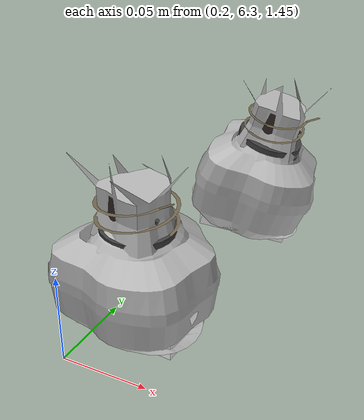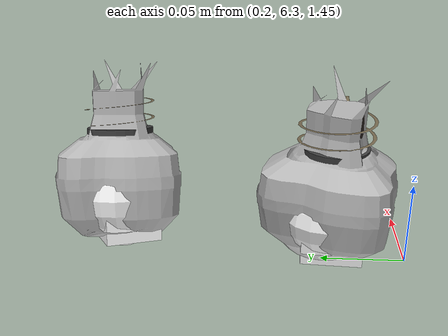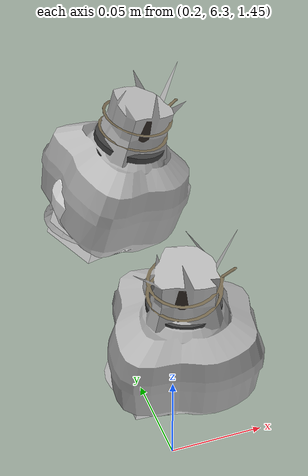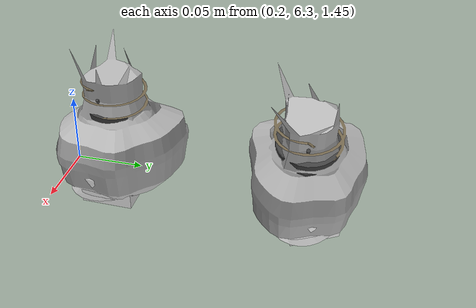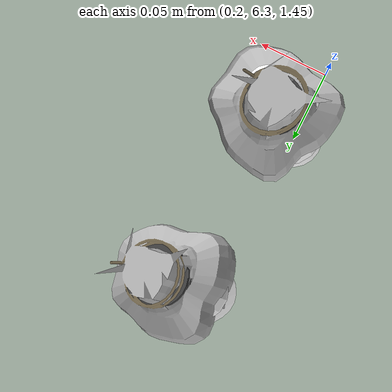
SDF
<sdf version="1.11">
 <world name="peach_orchard">
  <model name="ground">
   <static>true</static>
   <link name="link">
    <visual name="soil">
     <geometry><plane><normal>0 0 1</normal><size>32 22</size></plane></geometry>
     <material>
      <ambient>1 1 1 1</ambient>
      <diffuse>1 1 1 1</diffuse>
      <specular>0.1 0.1 0.1 1</specular>
      <pbr>
       <metal>
        <albedo_map>textures/soil_albedo.png</albedo_map>
        <normal_map type="tangent">textures/soil_normal.png</normal_map>
        <roughness>0.95</roughness>
        <metalness>0</metalness>
       </metal>
      </pbr>
     </material>
    </visual>
    <collision name="c_soil">
     <geometry><plane><normal>0 0 1</normal><size>32 22</size></plane></geometry>
    </collision>
   </link>
  </model>
  <model name="peach_tree_r2_t6_09">
   <pose>0.22 6.47412 1.45 0 0.282973 0.109489</pose>
   <static>true</static>
   <link name="bag">
    <visual name="bag_mesh">
     <pose>0 0 0.0460297 0 0 0</pose>
     <geometry>
      <mesh><uri>model://peach_sim/meshes/bagged_peach.glb</uri><scale>0.981084 1.12652 1.04613</scale></mesh>
     </geometry>
    </visual>
    <visual name="body">
     <pose>0 0 0.0280297 0 0 0</pose>
     <geometry><ellipsoid><radii>0.0367906 0.0292895 0.0302721</radii></ellipsoid></geometry>
     <material>
      <ambient>1 1 1 1</ambient>
      <diffuse>1 1 1 1</diffuse>
      <specular>0.1 0.1 0.1 1</specular>
      <pbr>
       <metal>
        <albedo_map>textures/paper_bag_albedo.png</albedo_map>
        <normal_map type="tangent">textures/paper_bag_normal.png</normal_map>
        <roughness>0.72</roughness>
        <metalness>0</metalness>
       </metal>
      </pbr>
     </material>
    </visual>
    <visual name="bottom_fold">
     <pose>0 0 0.012 0 0 0.35</pose>
     <geometry><box><size>0.0570255 0.0336829 0.022</size></box></geometry>
     <material>
      <ambient>1 1 1 1</ambient>
      <diffuse>1 1 1 1</diffuse>
      <specular>0.1 0.1 0.1 1</specular>
      <pbr>
       <metal>
        <albedo_map>textures/paper_bag_albedo.png</albedo_map>
        <normal_map type="tangent">textures/paper_bag_normal.png</normal_map>
        <roughness>0.8</roughness>
        <metalness>0</metalness>
       </metal>
      </pbr>
     </material>
    </visual>
    <visual name="fruit">
     <pose>0 0 0.0170505 0 0 0</pose>
     <geometry><sphere><radius>0.0239725</radius></sphere></geometry>
     <material>
      <ambient>1 1 1 1</ambient>
      <diffuse>1 1 1 1</diffuse>
      <specular>0.1 0.1 0.1 1</specular>
      <pbr>
       <metal>
        <albedo_map>textures/fruit_skin_albedo.png</albedo_map>
        <normal_map type="tangent">textures/fruit_skin_normal.png</normal_map>
        <roughness>0.55</roughness>
        <metalness>0</metalness>
       </metal>
      </pbr>
     </material>
    </visual>
    <visual name="neck">
     <pose>0 0 0.0650594 0 0 0</pose>
     <geometry><cylinder><radius>0.013</radius><length>0.018</length></cylinder></geometry>
     <material>
      <ambient>1 1 1 1</ambient>
      <diffuse>1 1 1 1</diffuse>
      <specular>0.1 0.1 0.1 1</specular>
      <pbr>
       <metal>
        <albedo_map>textures/paper_bag_albedo.png</albedo_map>
        <normal_map type="tangent">textures/paper_bag_normal.png</normal_map>
        <roughness>0.75</roughness>
        <metalness>0</metalness>
       </metal>
      </pbr>
     </material>
    </visual>
    <visual name="gather">
     <pose>0 0 0.0460594 0 0 0</pose>
     <geometry><cylinder><radius>0.019</radius><length>0.02</length></cylinder></geometry>
     <material>
      <ambient>1 1 1 1</ambient>
      <diffuse>1 1 1 1</diffuse>
      <specular>0.1 0.1 0.1 1</specular>
      <pbr>
       <metal>
        <albedo_map>textures/paper_bag_albedo.png</albedo_map>
        <normal_map type="tangent">textures/paper_bag_normal.png</normal_map>
        <roughness>0.8</roughness>
        <metalness>0</metalness>
       </metal>
      </pbr>
     </material>
    </visual>
    <visual name="inner_paper">
     <pose>0 0 0.0700594 0 0 0</pose>
     <geometry><cylinder><radius>0.01</radius><length>0.008</length></cylinder></geometry>
     <material>
      <ambient>0.180392 0.14902 0.133333 1</ambient>
      <diffuse>0.180392 0.14902 0.133333 1</diffuse>
      <specular>0.1 0.1 0.1 1</specular>
     </material>
    </visual>
    <visual name="wire_0">
     <pose>0 0 0.0600594 0 0 0</pose>
     <geometry><cylinder><radius>0.0205</radius><length>0.0035</length></cylinder></geometry>
     <material>
      <ambient>0.25 0.25 0.25 1</ambient>
      <diffuse>0.25 0.25 0.25 1</diffuse>
      <specular>0.1 0.1 0.1 1</specular>
     </material>
    </visual>
    <visual name="wire_1">
     <pose>0 0 0.0670594 0 0 0</pose>
     <geometry><cylinder><radius>0.0205</radius><length>0.0035</length></cylinder></geometry>
     <material>
      <ambient>0.25 0.25 0.25 1</ambient>
      <diffuse>0.25 0.25 0.25 1</diffuse>
      <specular>0.1 0.1 0.1 1</specular>
     </material>
    </visual>
    <visual name="wire_tail">
     <pose>0.01 0 0.0680594 0 0.521618 0</pose>
     <geometry><cylinder><radius>0.0012</radius><length>0.026</length></cylinder></geometry>
     <material>
      <ambient>0.25 0.25 0.25 1</ambient>
      <diffuse>0.25 0.25 0.25 1</diffuse>
      <specular>0.1 0.1 0.1 1</specular>
     </material>
    </visual>
    <collision name="c_body">
     <pose>0 0 0.0280297 0 0 0</pose>
     <geometry><cylinder><radius>0.0367906</radius><length>0.0560594</length></cylinder></geometry>
    </collision>
   </link>
  </model>
  <model name="peach_tree_r2_t6_10">
   <pose>0.22 6.34363 1.45 0 0.0306749 -0.380946</pose>
   <static>true</static>
   <link name="bag">
    <visual name="bag_mesh">
     <pose>0 0 0.0439361 0 0 -0</pose>
     <geometry>
      <mesh><uri>model://peach_sim/meshes/bagged_peach.glb</uri><scale>1.05679 1.20164 0.998549</scale></mesh>
     </geometry>
    </visual>
    <visual name="body">
     <pose>0 0 0.0259361 0 0 0</pose>
     <geometry><ellipsoid><radii>0.0396298 0.0312426 0.028011</radii></ellipsoid></geometry>
     <material>
      <ambient>1 1 1 1</ambient>
      <diffuse>1 1 1 1</diffuse>
      <specular>0.1 0.1 0.1 1</specular>
      <pbr>
       <metal>
        <albedo_map>textures/paper_bag_albedo.png</albedo_map>
        <normal_map type="tangent">textures/paper_bag_normal.png</normal_map>
        <roughness>0.72</roughness>
        <metalness>0</metalness>
       </metal>
      </pbr>
     </material>
    </visual>
    <visual name="bottom_fold">
     <pose>0 0 0.012 0 0 0.35</pose>
     <geometry><box><size>0.0614262 0.035929 0.022</size></box></geometry>
     <material>
      <ambient>1 1 1 1</ambient>
      <diffuse>1 1 1 1</diffuse>
      <specular>0.1 0.1 0.1 1</specular>
      <pbr>
       <metal>
        <albedo_map>textures/paper_bag_albedo.png</albedo_map>
        <normal_map type="tangent">textures/paper_bag_normal.png</normal_map>
        <roughness>0.8</roughness>
        <metalness>0</metalness>
       </metal>
      </pbr>
     </material>
    </visual>
    <visual name="fruit">
     <pose>0 0 0.0208377 0 0 0</pose>
     <geometry><sphere><radius>0.0279112</radius></sphere></geometry>
     <material>
      <ambient>1 1 1 1</ambient>
      <diffuse>1 1 1 1</diffuse>
      <specular>0.1 0.1 0.1 1</specular>
      <pbr>
       <metal>
        <albedo_map>textures/fruit_skin_albedo.png</albedo_map>
        <normal_map type="tangent">textures/fruit_skin_normal.png</normal_map>
        <roughness>0.55</roughness>
        <metalness>0</metalness>
       </metal>
      </pbr>
     </material>
    </visual>
    <visual name="neck">
     <pose>0 0 0.0608723 0 0 0</pose>
     <geometry><cylinder><radius>0.013</radius><length>0.018</length></cylinder></geometry>
     <material>
      <ambient>1 1 1 1</ambient>
      <diffuse>1 1 1 1</diffuse>
      <specular>0.1 0.1 0.1 1</specular>
      <pbr>
       <metal>
        <albedo_map>textures/paper_bag_albedo.png</albedo_map>
        <normal_map type="tangent">textures/paper_bag_normal.png</normal_map>
        <roughness>0.75</roughness>
        <metalness>0</metalness>
       </metal>
      </pbr>
     </material>
    </visual>
    <visual name="gather">
     <pose>0 0 0.0418723 0 0 0</pose>
     <geometry><cylinder><radius>0.019</radius><length>0.02</length></cylinder></geometry>
     <material>
      <ambient>1 1 1 1</ambient>
      <diffuse>1 1 1 1</diffuse>
      <specular>0.1 0.1 0.1 1</specular>
      <pbr>
       <metal>
        <albedo_map>textures/paper_bag_albedo.png</albedo_map>
        <normal_map type="tangent">textures/paper_bag_normal.png</normal_map>
        <roughness>0.8</roughness>
        <metalness>0</metalness>
       </metal>
      </pbr>
     </material>
    </visual>
    <visual name="inner_paper">
     <pose>0 0 0.0658723 0 0 0</pose>
     <geometry><cylinder><radius>0.01</radius><length>0.008</length></cylinder></geometry>
     <material>
      <ambient>0.180392 0.14902 0.133333 1</ambient>
      <diffuse>0.180392 0.14902 0.133333 1</diffuse>
      <specular>0.1 0.1 0.1 1</specular>
     </material>
    </visual>
    <visual name="wire_0">
     <pose>0 0 0.0558723 0 0 0</pose>
     <geometry><cylinder><radius>0.0205</radius><length>0.0035</length></cylinder></geometry>
     <material>
      <ambient>0.25 0.25 0.25 1</ambient>
      <diffuse>0.25 0.25 0.25 1</diffuse>
      <specular>0.1 0.1 0.1 1</specular>
     </material>
    </visual>
    <visual name="wire_1">
     <pose>0 0 0.0628723 0 0 0</pose>
     <geometry><cylinder><radius>0.0205</radius><length>0.0035</length></cylinder></geometry>
     <material>
      <ambient>0.25 0.25 0.25 1</ambient>
      <diffuse>0.25 0.25 0.25 1</diffuse>
      <specular>0.1 0.1 0.1 1</specular>
     </material>
    </visual>
    <visual name="wire_tail">
     <pose>0.01 0 0.0638723 0 0.521618 0</pose>
     <geometry><cylinder><radius>0.0012</radius><length>0.026</length></cylinder></geometry>
     <material>
      <ambient>0.25 0.25 0.25 1</ambient>
      <diffuse>0.25 0.25 0.25 1</diffuse>
      <specular>0.1 0.1 0.1 1</specular>
     </material>
    </visual>
    <collision name="c_body">
     <pose>0 0 0.0259361 0 0 0</pose>
     <geometry><cylinder><radius>0.0396298</radius><length>0.0518723</length></cylinder></geometry>
    </collision>
   </link>
  </model>
 </world>
</sdf>
